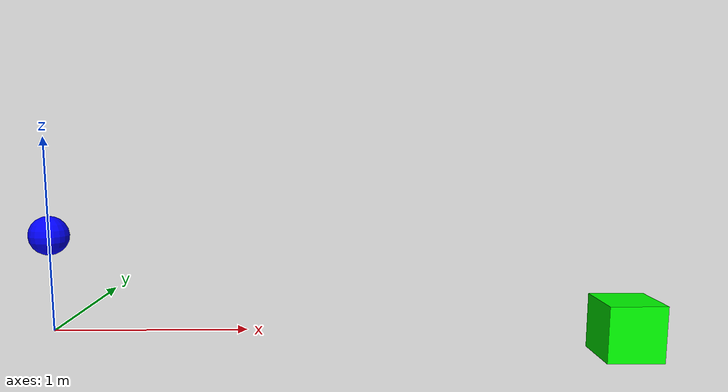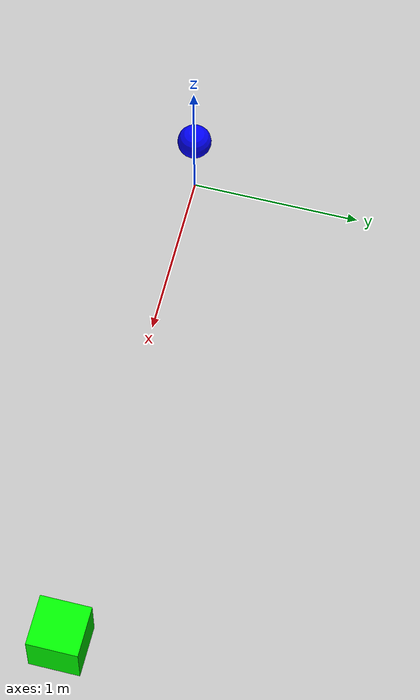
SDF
<?xml version="1.0" ?>
<sdf version="1.6">
  <model name="throwable_ball">
    <link name="ball_link">
      <pose>0 0 0.5 0 0 0</pose>
      <collision name="ball_collision">
        <geometry>
          <sphere>
            <radius>0.1</radius>
          </sphere>
        </geometry>
        <surface>
          <contact>
            <collide_bitmask>0xFFFFFFFF</collide_bitmask>
          </contact>
          <bounce>
            <restitution_coefficient>0.8</restitution_coefficient>
            <threshold>0.0</threshold>
          </bounce>
        </surface>
      </collision>
      <visual name="ball_visual">
        <geometry>
          <sphere>
            <radius>0.1</radius>
          </sphere>
        </geometry>
        <material>
          <ambient>0.0 0.0 1.0 1.0</ambient>
          <diffuse>0.0 0.0 1.0 1.0</diffuse>
        </material>
      </visual>
      <sensor name='my_contact' type='contact'>
          <contact>
            <collision>ball_collision</collision>
            <topic>/gazebo/default/throwable_ball/ball_link/my_contact</topic>
            <update_rate> 10 </update_rate>
          </contact>
      </sensor>
    </link>
    <link name="box_link">
      <pose>3 0 0 0 0 0</pose>
      <collision name="box_collision">
        <geometry>
          <box>
            <size>0.3 0.3 0.3</size>
          </box>
        </geometry>
        <surface>
          <contact>
            <collide_bitmask>0xFFFFFFFF</collide_bitmask>
          </contact>
          <bounce>
            <restitution_coefficient>0.8</restitution_coefficient>
            <threshold>0.0</threshold>
          </bounce>
        </surface>
      </collision>
      <visual name="box_visual">
        <geometry>
          <box>
            <size>0.3 0.3 0.3</size>
          </box>
        </geometry>
        <material>
          <ambient>0.0 1.0 0.0 1.0</ambient>
          <diffuse>0.0 1.0 0.0 1.0</diffuse>
        </material>
      </visual>
    </link>
  </model>
</sdf>
